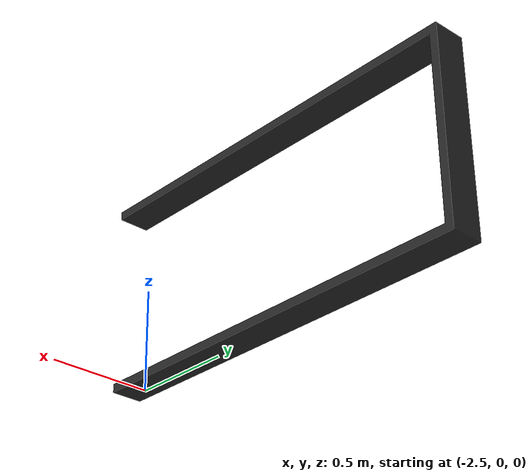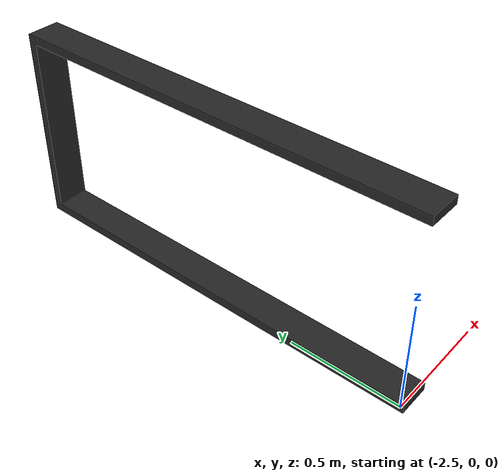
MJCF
<mujoco model="DoorFrame_f612f8d3">
  <compiler autolimits="true" boundmass="0.01" angle="radian"/>
  <default>
    <default class="/">
      <default class="__VISUAL_MJT__">
        <geom contype="0" conaffinity="0" group="0" mass="1e-08"/>
      </default>
      <default class="__STRUCTURAL_MJT__">
        <geom contype="8" conaffinity="15" group="4" friction="0.90000000000000002 0.90000000000000002 0.001" density="500" solref="0.025000000000000001 1" solimp="0.998 0.998 0.001"/>
      </default>
      <default class="__DYNAMIC_MJT__">
        <geom contype="1" conaffinity="15" group="4" friction="0.90000000000000002 0.90000000000000002 0.001" density="500" solref="0.025000000000000001 1" solimp="0.998 0.998 0.001"/>
      </default>
      <default class="__ARTICULABLE_DYNAMIC_MJT__">
        <geom contype="0" conaffinity="7" group="4" friction="0.90000000000000002 0.90000000000000002 0.001" density="500" solref="0.025000000000000001 1" solimp="0.998 0.998 0.001"/>
      </default>
    </default>
  </default>
  <asset>
    <material name="material_BlackWood" class="/" specular="0.5" shininess="0.5" rgba="0.14705879999999999 0.14705879999999999 0.14705879999999999 1"/>
    <mesh name="DoorFrame_f612f8d3_DoorFrame_f612f8d3" class="/" file="DoorFrame_f612f8d3_DoorFrame_f612f8d3/DoorFrame_f612f8d3_DoorFrame_f612f8d3.obj" scale="1 1 1" inertia="legacy"/>
  </asset>
  <worldbody>
    <body name="DoorFrame_f612f8d3">
      <body name="DoorFrame_f612f8d3_DoorFrame_f612f8d3" pos="-0 0 0" quat="1 0 0 0">
        <geom name="DoorFrame_f612f8d3_DoorFrame_f612f8d3" class="__VISUAL_MJT__" type="mesh" material="material_BlackWood" mesh="DoorFrame_f612f8d3_DoorFrame_f612f8d3"/>
        <geom name="DoorFrame_f612f8d3_DoorFrame_f612f8d3_PrimitiveCollider_0" class="__DYNAMIC_MJT__" type="box" size="0.019704734906554222 0.98126727342605591 0.078563220798969269" rgba="0 1 0 1" pos="-2.3975000381469727 0.9776376485824585 -0.039328902959823608" quat="8.6595606834267297e-17 0.70710678118654757 -8.6595606834267297e-17 0.70710678118654757"/>
        <geom name="DoorFrame_f612f8d3_DoorFrame_f612f8d3_PrimitiveCollider_1" class="__DYNAMIC_MJT__" type="box" size="0.019704734906554222 0.98126727342605591 0.078563220798969269" rgba="0 1 0 1" pos="-2.3975000381469727 0.9776376485824585 0.83967125415802002" quat="8.6595606834267297e-17 0.70710678118654757 -8.6595606834267297e-17 0.70710678118654757"/>
        <geom name="DoorFrame_f612f8d3_DoorFrame_f612f8d3_PrimitiveCollider_2" class="__DYNAMIC_MJT__" type="box" size="0.45972421765327454 0.019386943429708481 0.078563220798969269" rgba="0 1 0 1" pos="-2.3975000381469727 1.9398599863052368 0.39999997615814209" quat="8.6595606834267297e-17 0.70710678118654757 -8.6595606834267297e-17 0.70710678118654757"/>
      </body>
    </body>
  </worldbody>
</mujoco>
